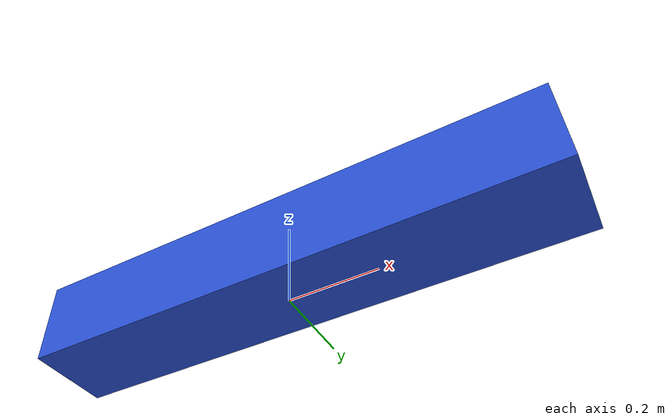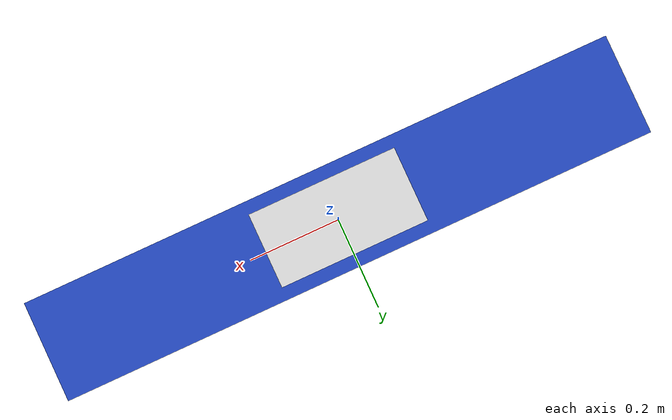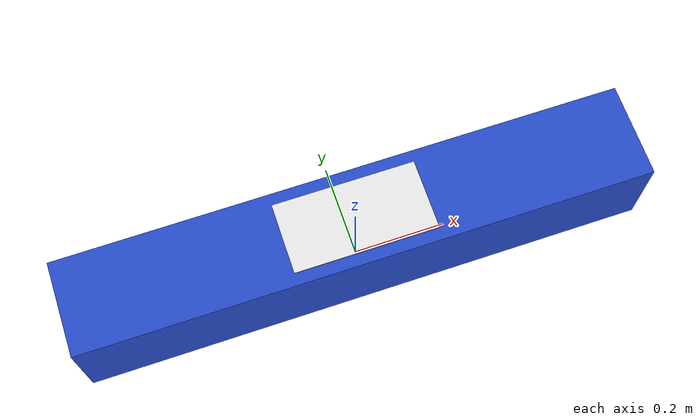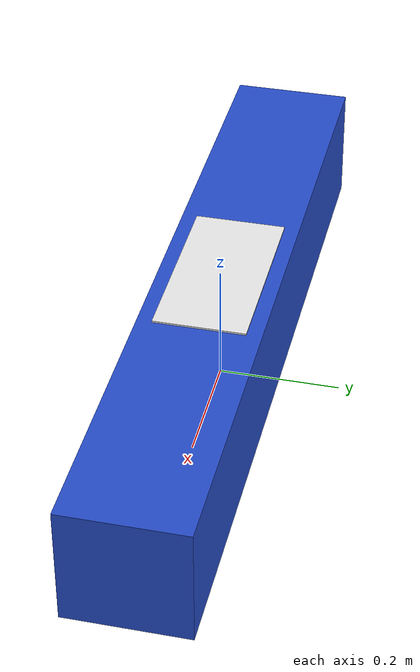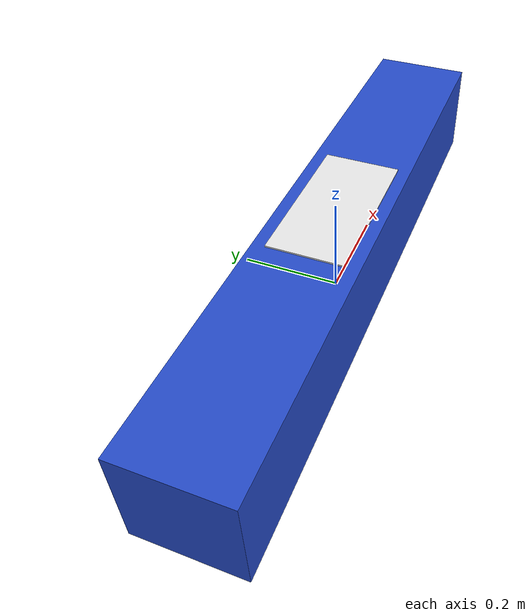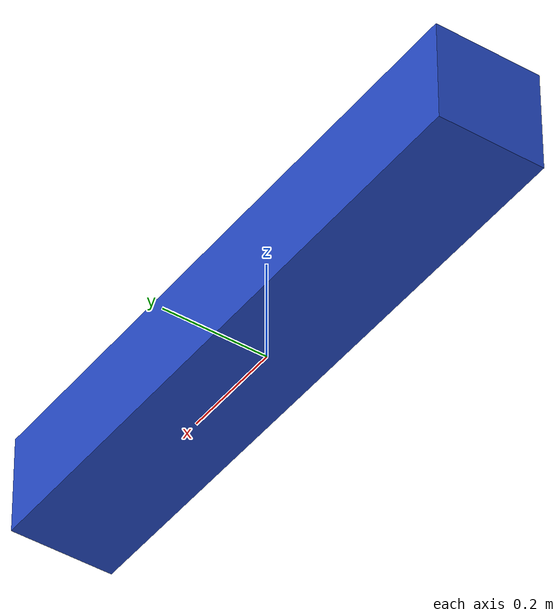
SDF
<?xml version="1.0" ?>
<sdf version="1.5">
  <model name="mbzirc_blue_brick">
      <static>0</static>
	  <link name="link">
		  <pose>0 0 0.1 0 0 0</pose>
	      <inertial>
	          <mass>0.381</mass>
	          <inertia>
	            <ixx>0.00252984</ixx>
	            <ixy>0</ixy>
	            <ixz>0</ixz>
	            <iyy>0.04680204</iyy>
	            <iyz>0</iyz>
	            <izz>0.04680204</izz>
	          </inertia>
	      </inertial>
		  <visual name="main_box">
			<geometry>
		      <box>
		       	<size>1.2 0.2 0.2</size>
		      </box>
		   	</geometry>
		    <material>
              <script>
                <uri>file://media/materials/scripts/gazebo.material</uri>
                <name>Gazebo/Blue</name>
              </script>
            </material>
          </visual>
          <visual name="white_plate">
          	<pose>0 0 0.1 0 0 0</pose>
			<geometry>
		      <box>
		       	<size>0.3 0.15 0.006</size>
		      </box>
		   	</geometry>
		    <material>
              <script>
                <uri>file://media/materials/scripts/gazebo.material</uri>
                <name>Gazebo/White</name>
              </script>
            </material>
          </visual>
	      <collision name="collision">
	        <pose>0 0 0 0 0 0</pose>
	        <geometry>
		      <box>
		       	<size>1.2 0.2 0.2</size>
		      </box>
		   	</geometry>
	        <max_contacts>10</max_contacts>
	        <surface>
	            <contact>
	              <ode/>
	            </contact>
	            <bounce/>
	            <friction>
	              <ode/>
	            </friction>
            </surface>
	      </collision>
	      <self_collide>0</self_collide>
          <kinematic>0</kinematic>
          <gravity>1</gravity>
	  </link>
  </model>
</sdf>
